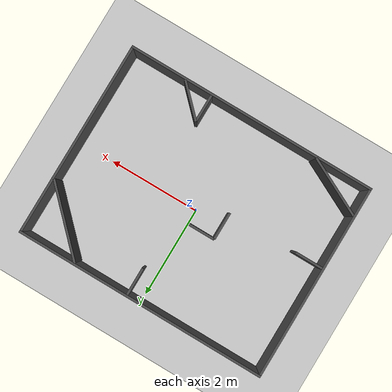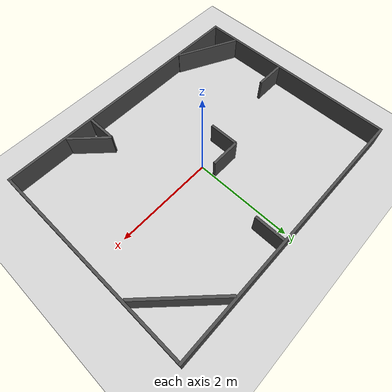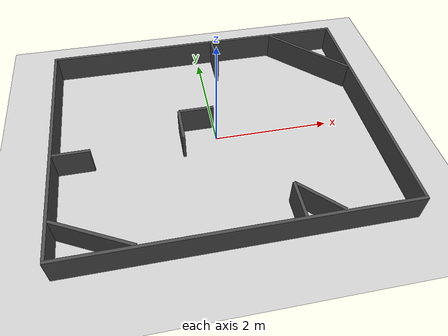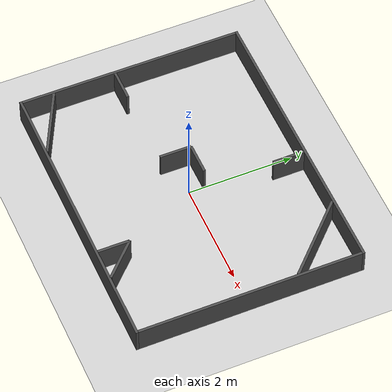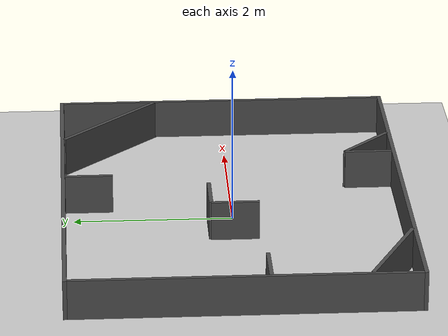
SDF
<?xml version="1.0" ?>
<sdf version="1.8">
  <world name="lab_map">
    <physics type="ode">
      <real_time_update_rate>1000.0</real_time_update_rate>
      <max_step_size>0.001</max_step_size>
      <real_time_factor>1.0</real_time_factor>
    </physics>

    <plugin filename="gz-sim-physics-system" name="gz::sim::systems::Physics"></plugin>
    <plugin filename="gz-sim-user-commands-system" name="gz::sim::systems::UserCommands"></plugin>
    <plugin filename="gz-sim-scene-broadcaster-system" name="gz::sim::systems::SceneBroadcaster"></plugin>
    <plugin filename="gz-sim-sensors-system" name="gz::sim::systems::Sensors">
      <render_engine>ogre2</render_engine>
    </plugin>
    <plugin filename="gz-sim-imu-system" name="gz::sim::systems::Imu"></plugin>

    <light type="directional" name="sun">
      <cast_shadows>true</cast_shadows>
      <pose>0 0 10 0 0 0</pose>
      <diffuse>0.8 0.8 0.8 1</diffuse>
      <specular>0.2 0.2 0.2 1</specular>
      <direction>-0.5 0.1 -0.9</direction>
    </light>

    <!-- Ground Plane -->
    <model name="ground_plane">
      <static>true</static>
      <link name="link">
        <collision name="collision">
          <geometry><plane><normal>0 0 1</normal><size>100 100</size></plane></geometry>
        </collision>
        <visual name="visual">
          <geometry><plane><normal>0 0 1</normal><size>100 100</size></plane></geometry>
          <material>
            <ambient>0.8 0.8 0.8 1</ambient>
            <diffuse>0.8 0.8 0.8 1</diffuse>
            <specular>0.8 0.8 0.8 1</specular>
          </material>
        </visual>
      </link>
    </model>

    <!-- Boundary Walls (Outer dimension: 5.4m x 4.2m) -->
    <!-- Center is (0,0). X spans -2.7 to 2.7. Y spans -2.1 to 2.1 -->
    <model name="lab_boundaries">
      <static>true</static>
      <!-- Top Wall -->
      <link name="wall_top">
        <pose>0 2.125 0.25 0 0 0</pose>
        <collision name="collision"><geometry><box><size>5.5 0.05 0.5</size></box></geometry></collision>
        <visual name="visual"><geometry><box><size>5.5 0.05 0.5</size></box></geometry><material><ambient>0.3 0.3 0.3 1</ambient></material></visual>
      </link>
      <!-- Bottom Wall -->
      <link name="wall_bottom">
        <pose>0 -2.125 0.25 0 0 0</pose>
        <collision name="collision"><geometry><box><size>5.5 0.05 0.5</size></box></geometry></collision>
        <visual name="visual"><geometry><box><size>5.5 0.05 0.5</size></box></geometry><material><ambient>0.3 0.3 0.3 1</ambient></material></visual>
      </link>
      <!-- Left Wall -->
      <link name="wall_left">
        <pose>-2.725 0 0.25 0 0 0</pose>
        <collision name="collision"><geometry><box><size>0.05 4.2 0.5</size></box></geometry></collision>
        <visual name="visual"><geometry><box><size>0.05 4.2 0.5</size></box></geometry><material><ambient>0.3 0.3 0.3 1</ambient></material></visual>
      </link>
      <!-- Right Wall -->
      <link name="wall_right">
        <pose>2.725 0 0.25 0 0 0</pose>
        <collision name="collision"><geometry><box><size>0.05 4.2 0.5</size></box></geometry></collision>
        <visual name="visual"><geometry><box><size>0.05 4.2 0.5</size></box></geometry><material><ambient>0.3 0.3 0.3 1</ambient></material></visual>
      </link>
    </model>

    <!-- Inner Obstacles -->
    <model name="inner_obstacles">
      <static>true</static>

      <!-- Bottom-Left Diagonal Cut -->
      <link name="obs_bl_diag">
        <pose>-2.1 -1.8 0.25 0 0 -0.4636</pose>
        <collision name="collision"><geometry><box><size>1.35 0.05 0.5</size></box></geometry></collision>
        <visual name="visual"><geometry><box><size>1.35 0.05 0.5</size></box></geometry><material><ambient>0.3 0.3 0.3 1</ambient></material></visual>
      </link>

      <!-- Left-Middle Protrusion -->
      <link name="obs_lm_horiz">
        <pose>-2.4 -0.3 0.25 0 0 0</pose>
        <collision name="collision"><geometry><box><size>0.6 0.05 0.5</size></box></geometry></collision>
        <visual name="visual"><geometry><box><size>0.6 0.05 0.5</size></box></geometry><material><ambient>0.3 0.3 0.3 1</ambient></material></visual>
      </link>

      <!-- Center L-Shape -->
      <link name="obs_center_horiz">
        <pose>-0.3 0.3 0.25 0 0 0</pose>
        <collision name="collision"><geometry><box><size>0.6 0.05 0.5</size></box></geometry></collision>
        <visual name="visual"><geometry><box><size>0.6 0.05 0.5</size></box></geometry><material><ambient>0.3 0.3 0.3 1</ambient></material></visual>
      </link>
      <link name="obs_center_vert">
        <pose>-0.6 0.0 0.25 0 0 0</pose>
        <collision name="collision"><geometry><box><size>0.05 0.6 0.5</size></box></geometry></collision>
        <visual name="visual"><geometry><box><size>0.05 0.6 0.5</size></box></geometry><material><ambient>0.3 0.3 0.3 1</ambient></material></visual>
      </link>

      <!-- Top-Middle Protrusion -->
      <link name="obs_tm_vert">
        <pose>0.3 1.8 0.25 0 0 0</pose>
        <collision name="collision"><geometry><box><size>0.05 0.6 0.5</size></box></geometry></collision>
        <visual name="visual"><geometry><box><size>0.05 0.6 0.5</size></box></geometry><material><ambient>0.3 0.3 0.3 1</ambient></material></visual>
      </link>

      <!-- Top-Right Diagonal Cut -->
      <link name="obs_tr_diag">
        <pose>2.1 1.5 0.25 0 0 -0.7853</pose>
        <collision name="collision"><geometry><box><size>1.7 0.05 0.5</size></box></geometry></collision>
        <visual name="visual"><geometry><box><size>1.7 0.05 0.5</size></box></geometry><material><ambient>0.3 0.3 0.3 1</ambient></material></visual>
      </link>

      <!-- Bottom-Right Triangle Area -->
      <link name="obs_br_vert">
        <pose>0.9 -1.8 0.25 0 0 0</pose>
        <collision name="collision"><geometry><box><size>0.05 0.6 0.5</size></box></geometry></collision>
        <visual name="visual"><geometry><box><size>0.05 0.6 0.5</size></box></geometry><material><ambient>0.3 0.3 0.3 1</ambient></material></visual>
      </link>
      <link name="obs_br_diag">
        <pose>1.2 -1.8 0.25 0 0 -0.7853</pose>
        <collision name="collision"><geometry><box><size>0.85 0.05 0.5</size></box></geometry></collision>
        <visual name="visual"><geometry><box><size>0.85 0.05 0.5</size></box></geometry><material><ambient>0.3 0.3 0.3 1</ambient></material></visual>
      </link>
    </model>

  </world>
</sdf>
